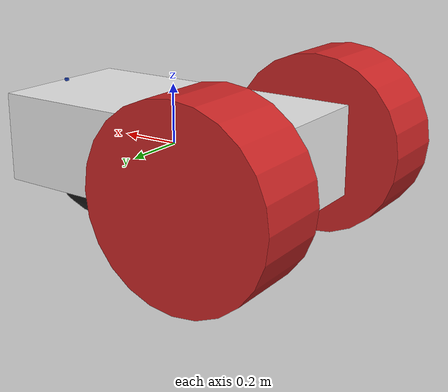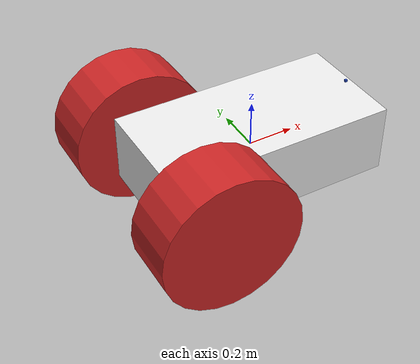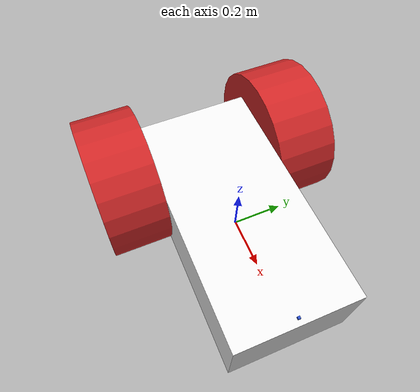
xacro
<?xml version="1.0"?>
<robot xmlns:xacro="http://www.ros.org/wiki/xacro" name="simple_rover">
  <xacro:property name="wheel_separation" value="0.070" />
  <xacro:property name="wheel_radius" value="0.3" />
  <xacro:property name="caster_wheel_radius" value="0.2" />
  <xacro:property name="wheel_width" value="0.25" />
  <xacro:property name="body_width" value="0.5" />
  <xacro:property name="body_length" value="1.0" />
  <xacro:property name="body_height" value="0.3" />

  <gazebo reference="base_link">
    <material>Gazebo/White</material>
    <mu1>0.2</mu1>
    <mu2>0.2</mu2>
  </gazebo>

  <gazebo reference="right_wheel">
    <material>Gazebo/Red</material>
    <mu1>0.84</mu1>
    <mu2>0.84</mu2>
  </gazebo>

  <gazebo reference="left_wheel">
    <material>Gazebo/Red</material>
    <mu1>0.84</mu1>
    <mu2>0.84</mu2>
  </gazebo>

  <gazebo reference="caster_wheel">
    <material>Gazebo/Black</material>
    <mu1>0.84</mu1>
    <mu2>0.84</mu2>
  </gazebo>

  <link name="base_link">
    <visual>
      <geometry>
        <box size="${body_length} ${body_width} ${body_height}"/>
      </geometry>
    </visual>

    <collision>
      <geometry>
        <box size="${body_length} ${body_width} ${body_height}"/>
      </geometry>
    </collision>

    <inertial>
      <mass value="1"/>
      <inertia ixx="0.166667" ixy="0" ixz="0" iyy="0.166667" iyz="0" izz="0.166667"/>
    </inertial>
  </link>

  <link name="left_wheel">
    <visual>
      <geometry>
        <cylinder radius="${wheel_radius}" length="${wheel_width}"/>
      </geometry>
    </visual>

    <collision>
      <geometry>
        <cylinder radius="${wheel_radius}" length="${wheel_width}"/>
      </geometry>
    </collision>

    <inertial>
      <mass value="1"/>
      <inertia ixx="0.145833" ixy="0.0" ixz="0.0" iyy="0.145833" iyz="0.0" izz="0.125"/>
    </inertial>
  </link>

  <link name="right_wheel">
    <visual>
      <geometry>
        <cylinder radius="${wheel_radius}" length="${wheel_width}"/>
      </geometry>
    </visual>

    <collision>
      <geometry>
        <cylinder radius="${wheel_radius}" length="${wheel_width}"/>
      </geometry>
    </collision>

    <inertial>
      <mass value="1"/>
      <inertia ixx="0.145833" ixy="0.0" ixz="0.0" iyy="0.145833" iyz="0.0" izz="0.125"/>
    </inertial>
  </link>

  <link name="caster_wheel">
    <visual>
      <geometry>
        <sphere radius="${caster_wheel_radius}"/>
      </geometry>
    </visual>

    <collision>
      <geometry>
        <sphere radius="${caster_wheel_radius}"/>
      </geometry>
    </collision>

    <inertial>
      <mass value="1"/>
      <inertia ixx="0.1" ixy="0.0" ixz="0.0" iyy="0.1" iyz="0.0" izz="0.1"/>
    </inertial>
  </link>
  <link name="camera_link">
    <visual>
      <geometry>
        <box size="0.01 0.01 0.01"/>
      </geometry>
    </visual>

    <collision>
      <geometry>
        <box size="0.01 0.01 0.01"/>
      </geometry>
    </collision>

    <inertial>
      <mass value="0.01"/>
      <inertia ixx="0.0001" ixy="0.0" ixz="0.0" iyy="0.0001" iyz="0.0" izz="0.0001"/>
    </inertial>
  </link>

    <gazebo reference="camera_link">
      <material>Gazebo/Blue</material>
    <sensor name="camera" type="camera">
      <pose>0 0 0 0 0 0</pose>
      <always_on>true</always_on>
      <visualize>true</visualize>
      <update_rate>30</update_rate>
      <topic>camera/image_raw</topic>
      <camera>
        <camera_info_topic>camera/camera_info</camera_info_topic>
      </camera>
    </sensor>
    </gazebo>

  <joint name="joint_left" type="continuous">
    <parent link="base_link"/>
    <child link="left_wheel"/>
    <origin xyz="-0.375 -0.375 0" rpy="1.5707 0 0"/>
    <axis xyz="0 0 1"/>
    <dynamics friction="0.1"/>
  </joint>

  <joint name="joint_right" type="continuous">
    <parent link="base_link"/>
    <child link="right_wheel"/>
    <origin xyz="-0.375 0.375 0" rpy="1.5707 0 0"/>
    <axis xyz="0 0 1"/>
    <dynamics friction="0.1"/>
  </joint>

  <joint name="joint_caster_wheel" type="continuous">
    <parent link="base_link"/>
    <child link="caster_wheel"/>
    <origin xyz="0.275 0 -0.1" rpy="0 0 0"/>
    <axis xyz="1 0 0"/> <dynamics friction="0.1"/>
  </joint>
  <joint name="camera_joint" type="fixed">
    <parent link="base_link"/>
    <child link="camera_link"/>
    <origin xyz="0.475 0 0.155" rpy="3.14159 0 0"/>
    <dynamics friction="0.1"/>
  </joint>
  <gazebo>
    <plugin filename="gz-sim-diff-drive-system" name="gz::sim::systems::DiffDrive">
        <left_joint>joint_left</left_joint>
        <right_joint>joint_right</right_joint>
        <wheel_separation>${wheel_separation + wheel_width}</wheel_separation>
        <wheel_radius>${wheel_radius}</wheel_radius>
        <odom_publish_frequency>30</odom_publish_frequency>
        <max_wheel_torque>20</max_wheel_torque>
        <max_wheel_acceleration>1.0</max_wheel_acceleration>
        <topic>cmd_vel</topic>
        <odom_topic>odom</odom_topic>
        <frame_id>odom</frame_id>
        <child_frame_id>base_link</child_frame_id>
      </plugin>
  </gazebo>
</robot>
